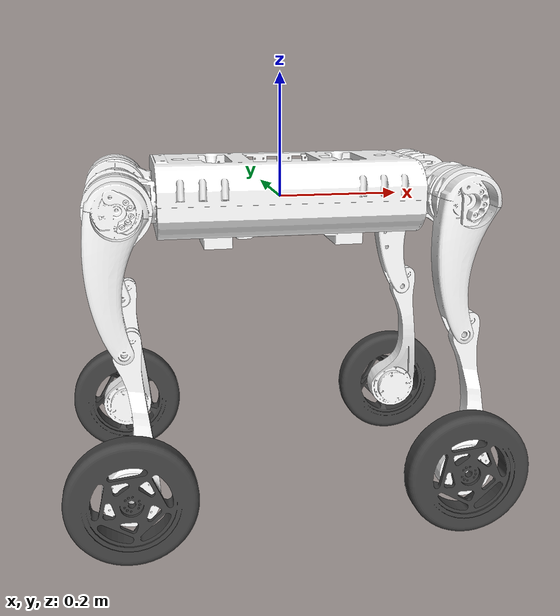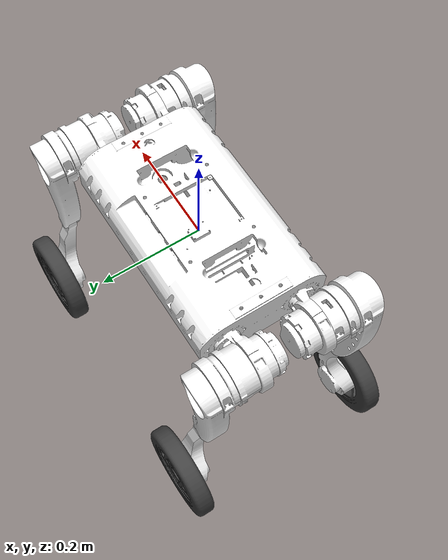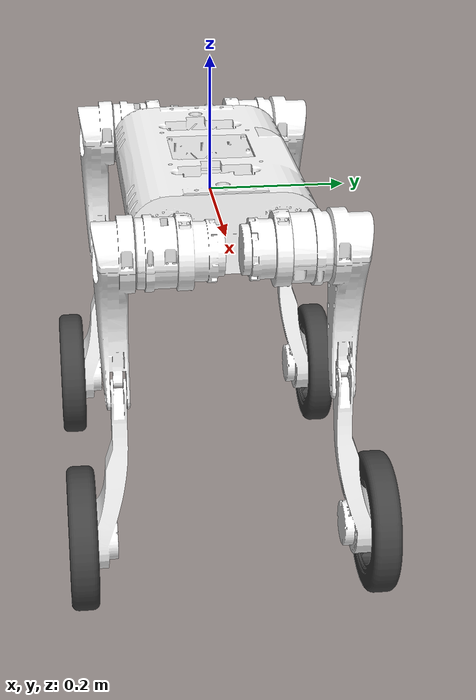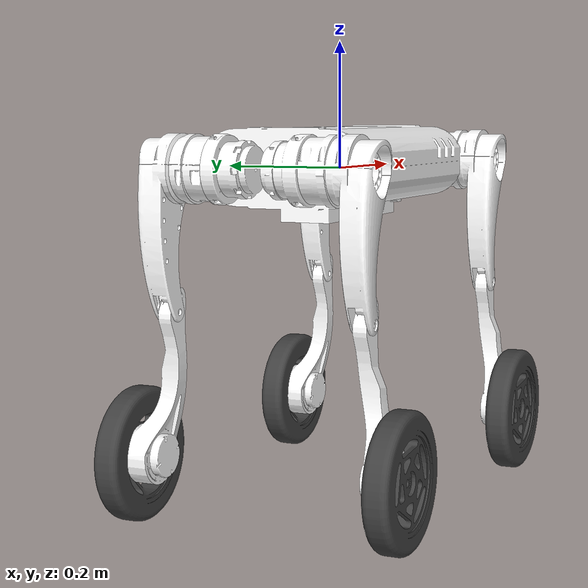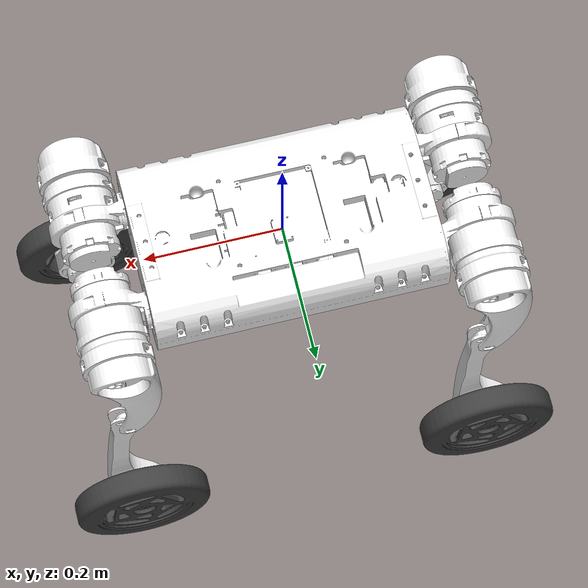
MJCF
<mujoco model="RP_wd">
  <compiler angle="radian" meshdir="meshes/" />
  <asset>
    <mesh name="base_link" file="base_link.STL" />
    <mesh name="LF_ABAD_LINK" file="LF_ABAD_LINK.STL" />
    <mesh name="LF_HIP_LINK" file="LF_HIP_LINK.STL" />
    <mesh name="LF_KENN_LINK" file="LF_KENN_LINK.STL" />
    <mesh name="LF_FOOT_LINK" file="LF_FOOT_LINK.STL" />
    <mesh name="RF_ABAD_LINK" file="RF_ABAD_LINK.STL" />
    <mesh name="RF_HIP_LINK" file="RF_HIP_LINK.STL" />
    <mesh name="RF_KENN_LINK" file="RF_KENN_LINK.STL" />
    <mesh name="RF_FOOT_LINK" file="RF_FOOT_LINK.STL" />
    <mesh name="LB_ABAD_LINK" file="LB_ABAD_LINK.STL" />
    <mesh name="LB_HIP_LINK" file="LB_HIP_LINK.STL" />
    <mesh name="LB_KENN_LINK" file="LB_KENN_LINK.STL" />
    <mesh name="LB_FOOT_LINK" file="LB_FOOT_LINK.STL" />
    <mesh name="RB_ABAD_LINK" file="RB_ABAD_LINK.STL" />
    <mesh name="RB_HIP_LINK" file="RB_HIP_LINK.STL" />
    <mesh name="RB_KENN_LINK" file="RB_KENN_LINK.STL" />
    <mesh name="RB_FOOT_LINK" file="RB_FOOT_LINK.STL" />
    <material name="base_link_mat" rgba="1 1 1 1" specular="0" />
    <material name="LF_ABAD_LINK_mat" rgba="1 1 1 1" specular="0" />
    <material name="LF_HIP_LINK_mat" rgba="1 1 1 1" specular="0" />
    <material name="LF_KENN_LINK_mat" rgba="1 1 1 1" specular="0" />
    <material name="LF_FOOT_LINK_mat" rgba="0.251 0.251 0.251 1" specular="0" />
    <material name="RF_ABAD_LINK_mat" rgba="1 1 1 1" specular="0" />
    <material name="RF_HIP_LINK_mat" rgba="1 1 1 1" specular="0" />
    <material name="RF_KENN_LINK_mat" rgba="1 1 1 1" specular="0" />
    <material name="RF_FOOT_LINK_mat" rgba="0.251 0.251 0.251 1" specular="0" />
    <material name="LB_ABAD_LINK_mat" rgba="1 1 1 1" specular="0" />
    <material name="LB_HIP_LINK_mat" rgba="1 1 1 1" specular="0" />
    <material name="LB_KENN_LINK_mat" rgba="1 1 1 1" specular="0" />
    <material name="LB_FOOT_LINK_mat" rgba="0.251 0.251 0.251 1" specular="0" />
    <material name="RB_ABAD_LINK_mat" rgba="1 1 1 1" specular="0" />
    <material name="RB_HIP_LINK_mat" rgba="1 1 1 1" specular="0" />
    <material name="RB_KENN_LINK_mat" rgba="1 1 1 1" specular="0" />
    <material name="RB_FOOT_LINK_mat" rgba="0.251 0.251 0.251 1" specular="0" />
  </asset>

  <worldbody>
    <body name="base_link" pos="0 0 0">
      <inertial pos="-0.0064993 -0.0009295 0.0021204" mass="7.4975959" fullinertia="0.0589761 0.1812866 0.2224493 0.0000143 0.000089 0.0004461"/>
      <geom pos="0 0 0" group="1" contype="0" conaffinity="0" material="base_link_mat" type="mesh" mesh="base_link" />
      <geom pos="0 0 0" rgba="0.9373 0.2667 0.2667 1" group="3" contype="1" conaffinity="1" type="box" size="0.21 0.13 0.06" />
      <body name="LF_ABAD_LINK" pos="0.26915 0.07715 0.007">
        <joint name="LF_ABAD_JOINT" type="hinge" axis="1 0 0" limited="true" range="-1 1" damping="0" frictionloss="0"/>
        <inertial pos="-0.0009598 -0.0317346 0" mass="0.8603295" fullinertia="0.0006379 0.0007923 0.0006889 0.0000452 0 0"/>
        <geom pos="0 0 0" group="1" contype="0" conaffinity="0" material="LF_ABAD_LINK_mat" type="mesh" mesh="LF_ABAD_LINK" />
        <geom pos="0 -0.034 0" quat="0.7071068 0.7071068 0 0" rgba="0.9373 0.2667 0.2667 1" group="3" contype="1" conaffinity="1" type="cylinder" size="0.048 0.032" />
        <body name="LF_HIP_LINK" pos="0 0.0674 0">
          <joint name="LF_HIP_JOINT" type="hinge" axis="0 1 0" limited="true" range="-1.57 3.49" damping="0" frictionloss="0"/>
          <inertial pos="-0.0028159 -0.0294115 -0.0241435" mass="1.3307055" fullinertia="0.0057683 0.0055296 0.0015633 0.0001375 -0.0003075 0.000976"/>
          <geom pos="0 0 0" group="1" contype="0" conaffinity="0" material="LF_HIP_LINK_mat" type="mesh" mesh="LF_HIP_LINK" />
          <geom pos="0 -0.014 0" quat="0.7071068 0.7071068 0 0" rgba="0.9373 0.2667 0.2667 1" group="3" contype="1" conaffinity="1" type="cylinder" size="0.048 0.055" />
          <geom pos="-0.02 0.016 -0.12" quat="0.7071068 0.7071068 0 0" rgba="0.9373 0.2667 0.2667 1" group="3" contype="1" conaffinity="1" type="box" size="0.03 0.07 0.02" />
          <body name="LF_KENN_LINK" pos="0 0.011764 -0.2125">
            <joint name="LF_KENN_JOINT" type="hinge" axis="0 1 0" limited="true" range="-2.7 -0.83" damping="0" frictionloss="0"/>
            <inertial pos="0.0039019 0.0253379 -0.1888436" mass="0.636513" fullinertia="0.0027405 0.002845 0.0003994 0.0000325 -0.0001755 0.0003959"/>
            <geom pos="0 0 0" group="1" contype="0" conaffinity="0" material="LF_KENN_LINK_mat" type="mesh" mesh="LF_KENN_LINK" />
            <geom pos="0.016 0.006 -0.08" quat="0.9957034 0.0608998 -0.0696263 0.0042585" rgba="0.9373 0.2667 0.2667 1" group="3" contype="1" conaffinity="1" type="cylinder" size="0.02 0.09" />
            <geom pos="0 0.021 -0.22" quat="0.7071068 0.7071068 0 0" rgba="0.9373 0.2667 0.2667 1" group="3" contype="1" conaffinity="1" type="cylinder" size="0.045 0.015" />
            <body name="LF_FOOT_LINK" pos="0 0.052 -0.22006">
              <joint name="LF_FOOT_JOINT" type="hinge" axis="0 1 0" damping="0" frictionloss="0"/>
              <inertial pos="-0.0000842 0.0012423 -0.0000301" mass="0.4354423" fullinertia="0.0012979 0.0024981 0.001296 0 0.0000008 0"/>
              <geom pos="0 0 0" group="1" contype="0" conaffinity="0" material="LF_FOOT_LINK_mat" type="mesh" mesh="LF_FOOT_LINK" />
              <geom pos="0.0000371 0.003 -0.0000005" quat="0.7071068 0.7071068 0 0" rgba="0.9373 0.2667 0.2667 1" group="3" contype="1" conaffinity="1" type="cylinder" size="0.1025 0.02" />
            </body>
          </body>
        </body>
      </body>
      <body name="RF_ABAD_LINK" pos="0.26915 -0.07715 0.007">
        <joint name="RF_ABAD_JOINT" type="hinge" axis="1 0 0" limited="true" range="-1 1" damping="0" frictionloss="0"/>
        <inertial pos="-0.0009598 0.0317346 0" mass="0.8603295" fullinertia="0.0006379 0.0007923 0.0006889 -0.0000452 0 0"/>
        <geom pos="0 0 0" group="1" contype="0" conaffinity="0" material="RF_ABAD_LINK_mat" type="mesh" mesh="RF_ABAD_LINK" />
        <geom pos="0 0.034 0" quat="0.7071068 -0.7071068 0 0" rgba="0.9373 0.2667 0.2667 1" group="3" contype="1" conaffinity="1" type="cylinder" size="0.048 0.032" />
        <body name="RF_HIP_LINK" pos="0 -0.0674 0">
          <joint name="RF_HIP_JOINT" type="hinge" axis="0 1 0" limited="true" range="-1.57 3.49" damping="0" frictionloss="0"/>
          <inertial pos="-0.0028159 0.0294115 -0.0241435" mass="1.3307055" fullinertia="0.0057683 0.0055296 0.0015633 -0.0001375 -0.0003075 -0.000976"/>
          <geom pos="0 0 0" group="1" contype="0" conaffinity="0" material="RF_HIP_LINK_mat" type="mesh" mesh="RF_HIP_LINK" />
          <geom pos="0 0.014 0" quat="0.7071068 -0.7071068 0 0" rgba="0.9373 0.2667 0.2667 1" group="3" contype="1" conaffinity="1" type="cylinder" size="0.048 0.055" />
          <geom pos="-0.02 -0.016 -0.12" quat="0.7071068 -0.7071068 0 0" rgba="0.9373 0.2667 0.2667 1" group="3" contype="1" conaffinity="1" type="box" size="0.03 0.07 0.02" />
          <body name="RF_KENN_LINK" pos="0 -0.011764 -0.2125">
            <joint name="RF_KENN_JOINT" type="hinge" axis="0 1 0" limited="true" range="-2.7 -0.83" damping="0" frictionloss="0"/>
            <inertial pos="0.0039019 -0.0253379 -0.1888436" mass="0.636513" fullinertia="0.0027405 0.002845 0.0003994 -0.0000325 -0.0001755 -0.0003959"/>
            <geom pos="0 0 0" group="1" contype="0" conaffinity="0" material="RF_KENN_LINK_mat" type="mesh" mesh="RF_KENN_LINK" />
            <geom pos="0.016 -0.006 -0.08" quat="0.9957034 -0.0608998 -0.0696263 -0.0042585" rgba="0.9373 0.2667 0.2667 1" group="3" contype="1" conaffinity="1" type="cylinder" size="0.02 0.09" />
            <geom pos="0 -0.021 -0.22" quat="0.7071068 -0.7071068 0 0" rgba="0.9373 0.2667 0.2667 1" group="3" contype="1" conaffinity="1" type="cylinder" size="0.045 0.015" />
            <body name="RF_FOOT_LINK" pos="0 -0.052 -0.22006">
              <joint name="RF_FOOT_JOINT" type="hinge" axis="0 1 0" damping="0" frictionloss="0"/>
              <inertial pos="-0.0000842 -0.0012423 -0.0000301" mass="0.4354423" fullinertia="0.0012979 0.0024981 0.001296 0 0.0000008 0"/>
              <geom pos="0 0 0" group="1" contype="0" conaffinity="0" material="RF_FOOT_LINK_mat" type="mesh" mesh="RF_FOOT_LINK" />
              <geom pos="0.0000371 -0.003 -0.0000005" quat="0.7071068 -0.7071068 0 0" rgba="0.9373 0.2667 0.2667 1" group="3" contype="1" conaffinity="1" type="cylinder" size="0.1025 0.02" />
            </body>
          </body>
        </body>
      </body>
      <body name="LB_ABAD_LINK" pos="-0.26885 0.07715 0.007">
        <joint name="LB_ABAD_JOINT" type="hinge" axis="1 0 0" limited="true" range="-1 1" damping="0" frictionloss="0"/>
        <inertial pos="0.0009598 -0.0317346 0" mass="0.8603295" fullinertia="0.0006379 0.0007923 0.0006889 -0.0000452 0 0"/>
        <geom pos="0 0 0" group="1" contype="0" conaffinity="0" material="LB_ABAD_LINK_mat" type="mesh" mesh="LB_ABAD_LINK" />
        <geom pos="0 -0.034 0" quat="0.7071068 0.7071068 0 0" rgba="0.9373 0.2667 0.2667 1" group="3" contype="1" conaffinity="1" type="cylinder" size="0.048 0.032" />
        <body name="LB_HIP_LINK" pos="0 0.0674 0">
          <joint name="LB_HIP_JOINT" type="hinge" axis="0 1 0" limited="true" range="-1.57 3.49" damping="0" frictionloss="0"/>
          <inertial pos="-0.0027582 -0.0294115 -0.0240635" mass="1.3307055" fullinertia="0.0057764 0.0055352 0.0015608 0.0001403 -0.0003087 0.0009799"/>
          <geom pos="0 0 0" group="1" contype="0" conaffinity="0" material="LB_HIP_LINK_mat" type="mesh" mesh="LB_HIP_LINK" />
          <geom pos="0 -0.014 0" quat="0.7071068 0.7071068 0 0" rgba="0.9373 0.2667 0.2667 1" group="3" contype="1" conaffinity="1" type="cylinder" size="0.048 0.055" />
          <geom pos="-0.02 0.016 -0.12" quat="0.7071068 0.7071068 0 0" rgba="0.9373 0.2667 0.2667 1" group="3" contype="1" conaffinity="1" type="box" size="0.03 0.07 0.0200005" />
          <body name="LB_KENN_LINK" pos="0 0.011764 -0.2125">
            <joint name="LB_KENN_JOINT" type="hinge" axis="0 1 0" limited="true" range="-2.7 -0.83" damping="0" frictionloss="0"/>
            <inertial pos="0.0039019 0.0253379 -0.1888436" mass="0.636513" fullinertia="0.0027405 0.002845 0.0003994 0.0000325 -0.0001755 0.0003959"/>
            <geom pos="0 0 0" group="1" contype="0" conaffinity="0" material="LB_KENN_LINK_mat" type="mesh" mesh="LB_KENN_LINK" />
            <geom pos="0.016 0.006 -0.08" quat="0.9957034 0.0608998 -0.0696263 0.0042585" rgba="0.9373 0.2667 0.2667 1" group="3" contype="1" conaffinity="1" type="cylinder" size="0.02 0.09" />
            <geom pos="0 0.021 -0.22" quat="0.7071068 0.7071068 0 0" rgba="0.9373 0.2667 0.2667 1" group="3" contype="1" conaffinity="1" type="cylinder" size="0.045 0.015" />
            <body name="LB_FOOT_LINK" pos="0 0.052 -0.22006">
              <joint name="LB_FOOT_JOINT" type="hinge" axis="0 1 0" damping="0" frictionloss="0"/>
              <inertial pos="-0.0000548 0.0044286 -0.0000713" mass="0.4354423" fullinertia="0.0012966 0.0024981 0.0012973 0 0.0000012 0"/>
              <geom pos="0 0 0" group="1" contype="0" conaffinity="0" material="LB_FOOT_LINK_mat" type="mesh" mesh="LB_FOOT_LINK" />
              <geom pos="0.0000371 0.003 -0.0000005" quat="0.7071068 0.7071068 0 0" rgba="0.9373 0.2667 0.2667 1" group="3" contype="1" conaffinity="1" type="cylinder" size="0.1025 0.02" />
            </body>
          </body>
        </body>
      </body>
      <body name="RB_ABAD_LINK" pos="-0.26885 -0.07715 0.007">
        <joint name="RB_ABAD_JOINT" type="hinge" axis="1 0 0" limited="true" range="-1 1" damping="0" frictionloss="0"/>
        <inertial pos="0.0009598 0.0317346 0" mass="0.8603295" fullinertia="0.0006379 0.0007923 0.0006889 0.0000452 0 0"/>
        <geom pos="0 0 0" group="1" contype="0" conaffinity="0" material="RB_ABAD_LINK_mat" type="mesh" mesh="RB_ABAD_LINK" />
        <geom pos="0 0.034 0" quat="0.7071068 -0.7071068 0 0" rgba="0.9373 0.2667 0.2667 1" group="3" contype="1" conaffinity="1" type="cylinder" size="0.048 0.032" />
        <body name="RB_HIP_LINK" pos="0 -0.0674 0">
          <joint name="RB_HIP_JOINT" type="hinge" axis="0 1 0" limited="true" range="-1.57 3.49" damping="0" frictionloss="0"/>
          <inertial pos="-0.0027582 0.0294115 -0.0240635" mass="1.3307055" fullinertia="0.0057764 0.0055352 0.0015608 -0.0001403 -0.0003087 -0.0009799"/>
          <geom pos="0 0 0" group="1" contype="0" conaffinity="0" material="RB_HIP_LINK_mat" type="mesh" mesh="RB_HIP_LINK" />
          <geom pos="0 0.014 0" quat="0.7071068 -0.7071068 0 0" rgba="0.9373 0.2667 0.2667 1" group="3" contype="1" conaffinity="1" type="cylinder" size="0.048 0.055" />
          <geom pos="-0.02 -0.016 -0.12" quat="0.7071068 -0.7071068 0 0" rgba="0.9373 0.2667 0.2667 1" group="3" contype="1" conaffinity="1" type="box" size="0.03 0.07 0.0200005" />
          <body name="RB_KENN_LINK" pos="0 -0.011764 -0.2125">
            <joint name="RB_KENN_JOINT" type="hinge" axis="0 1 0" limited="true" range="-2.7 -0.83" damping="0" frictionloss="0"/>
            <inertial pos="0.0039019 -0.0253379 -0.1888436" mass="0.636513" fullinertia="0.0027405 0.002845 0.0003994 -0.0000325 -0.0001755 -0.0003959"/>
            <geom pos="0 0 0" group="1" contype="0" conaffinity="0" material="RB_KENN_LINK_mat" type="mesh" mesh="RB_KENN_LINK" />
            <geom pos="0.016 -0.006 -0.08" quat="0.9957034 -0.0608998 -0.0696263 -0.0042585" rgba="0.9373 0.2667 0.2667 1" group="3" contype="1" conaffinity="1" type="cylinder" size="0.02 0.09" />
            <geom pos="0 -0.021 -0.22" quat="0.7071068 -0.7071068 0 0" rgba="0.9373 0.2667 0.2667 1" group="3" contype="1" conaffinity="1" type="cylinder" size="0.045 0.015" />
            <body name="RB_FOOT_LINK" pos="0 -0.052 -0.22006">
              <joint name="RB_FOOT_JOINT" type="hinge" axis="0 1 0" damping="0" frictionloss="0"/>
              <inertial pos="-0.0000548 -0.0044286 -0.0000713" mass="0.4354423" fullinertia="0.0012966 0.0024981 0.0012973 0 0.0000012 0"/>
              <geom pos="0 0 0" group="1" contype="0" conaffinity="0" material="RB_FOOT_LINK_mat" type="mesh" mesh="RB_FOOT_LINK" />
              <geom pos="0.0000371 -0.003 -0.0000005" quat="0.7071068 -0.7071068 0 0" rgba="0.9373 0.2667 0.2667 1" group="3" contype="1" conaffinity="1" type="cylinder" size="0.1025 0.02" />
            </body>
          </body>
        </body>
      </body>
    </body>
  </worldbody>
  <actuator>
    <position name="LF_ABAD_JOINT_servo" joint="LF_ABAD_JOINT" kp="21" forcelimited="true" forcerange="-42 42" />
    <position name="LF_HIP_JOINT_servo" joint="LF_HIP_JOINT" kp="21" forcelimited="true" forcerange="-42 42" />
    <position name="LF_KENN_JOINT_servo" joint="LF_KENN_JOINT" kp="21" forcelimited="true" forcerange="-42 42" />
    <position name="LF_FOOT_JOINT_servo" joint="LF_FOOT_JOINT" kp="100" />
    <position name="RF_ABAD_JOINT_servo" joint="RF_ABAD_JOINT" kp="21" forcelimited="true" forcerange="-42 42" />
    <position name="RF_HIP_JOINT_servo" joint="RF_HIP_JOINT" kp="21" forcelimited="true" forcerange="-42 42" />
    <position name="RF_KENN_JOINT_servo" joint="RF_KENN_JOINT" kp="21" forcelimited="true" forcerange="-42 42" />
    <position name="RF_FOOT_JOINT_servo" joint="RF_FOOT_JOINT" kp="100" />
    <position name="LB_ABAD_JOINT_servo" joint="LB_ABAD_JOINT" kp="21" forcelimited="true" forcerange="-42 42" />
    <position name="LB_HIP_JOINT_servo" joint="LB_HIP_JOINT" kp="21" forcelimited="true" forcerange="-42 42" />
    <position name="LB_KENN_JOINT_servo" joint="LB_KENN_JOINT" kp="21" forcelimited="true" forcerange="-42 42" />
    <position name="LB_FOOT_JOINT_servo" joint="LB_FOOT_JOINT" kp="100" />
    <position name="RB_ABAD_JOINT_servo" joint="RB_ABAD_JOINT" kp="21" forcelimited="true" forcerange="-42 42" />
    <position name="RB_HIP_JOINT_servo" joint="RB_HIP_JOINT" kp="21" forcelimited="true" forcerange="-42 42" />
    <position name="RB_KENN_JOINT_servo" joint="RB_KENN_JOINT" kp="21" forcelimited="true" forcerange="-42 42" />
    <position name="RB_FOOT_JOINT_servo" joint="RB_FOOT_JOINT" kp="100" />
  </actuator>
</mujoco>
